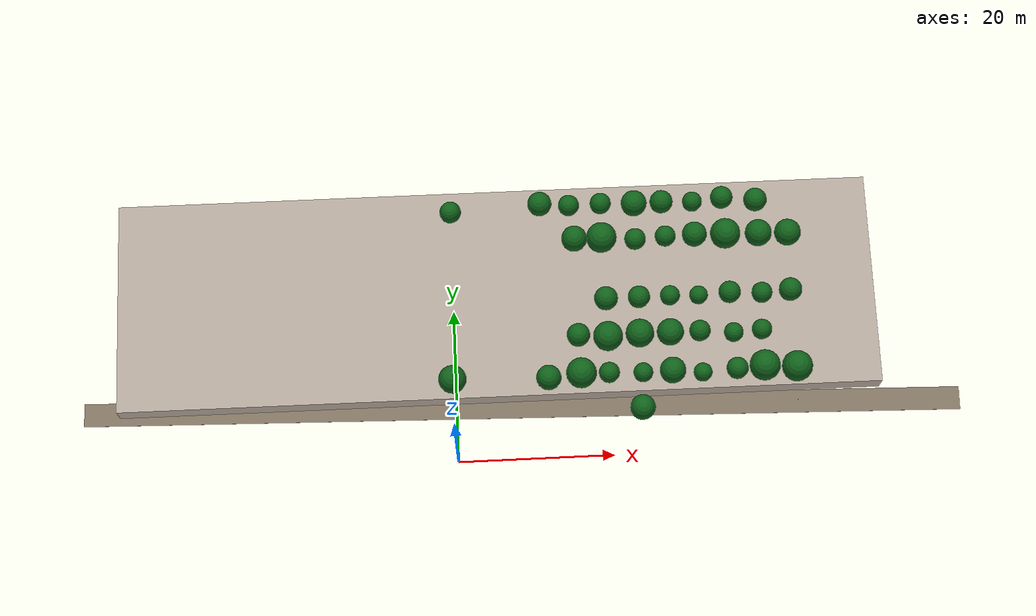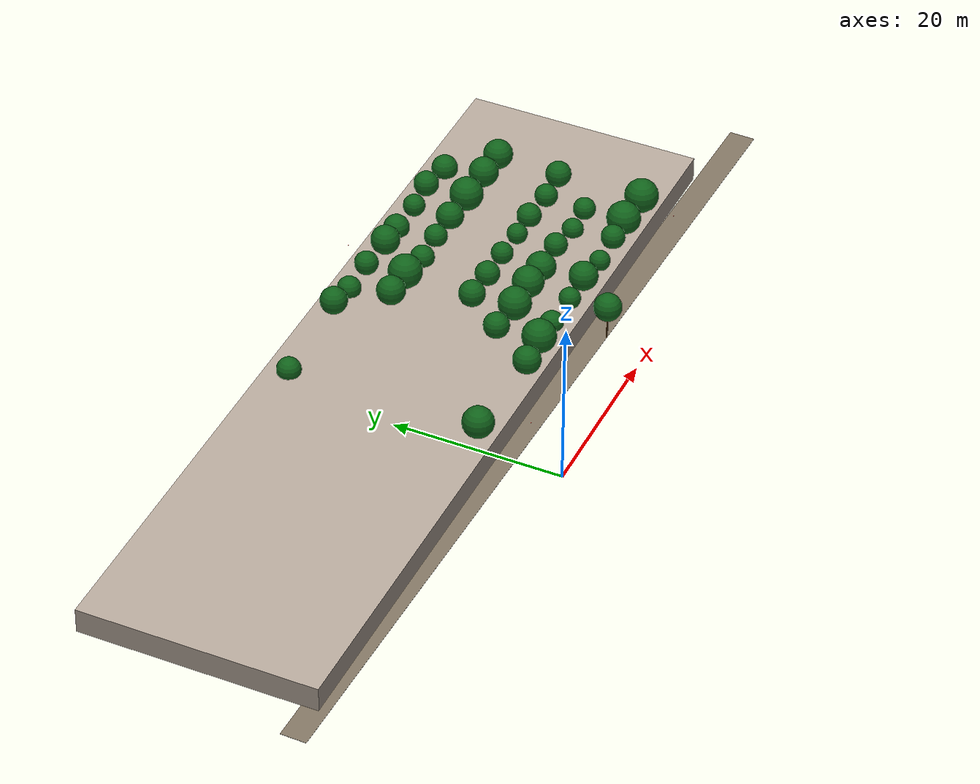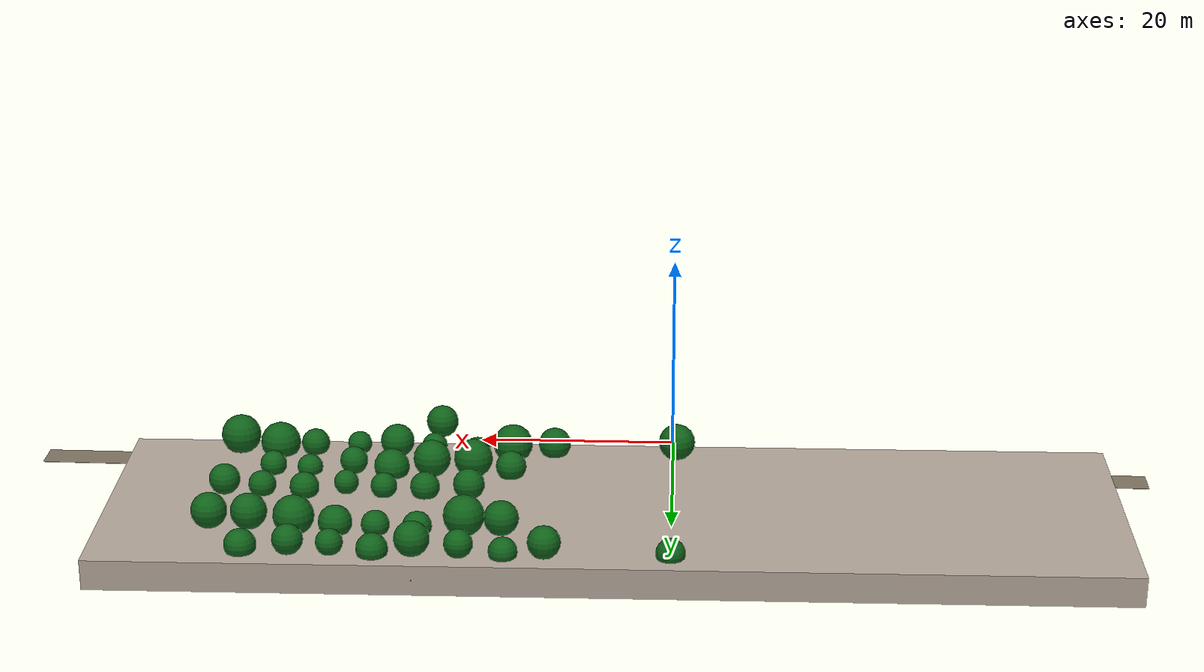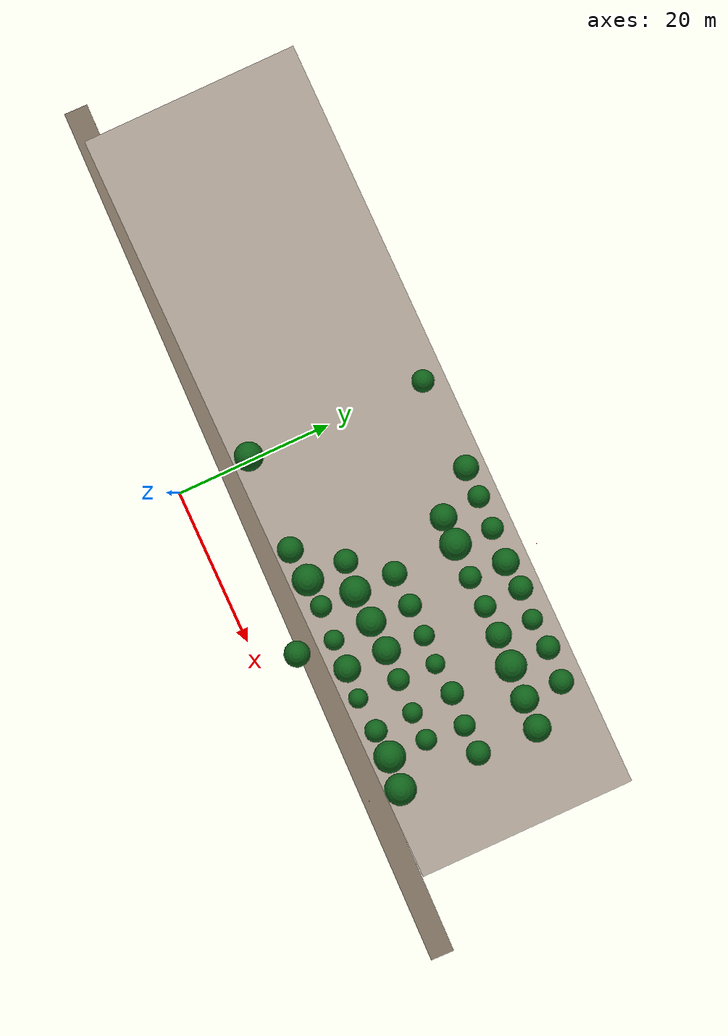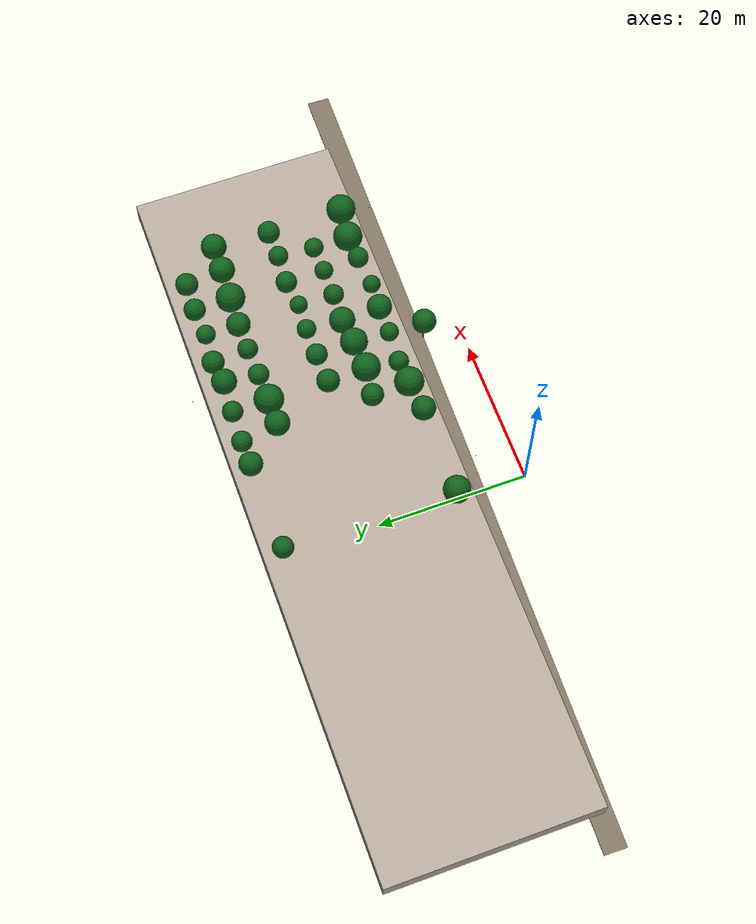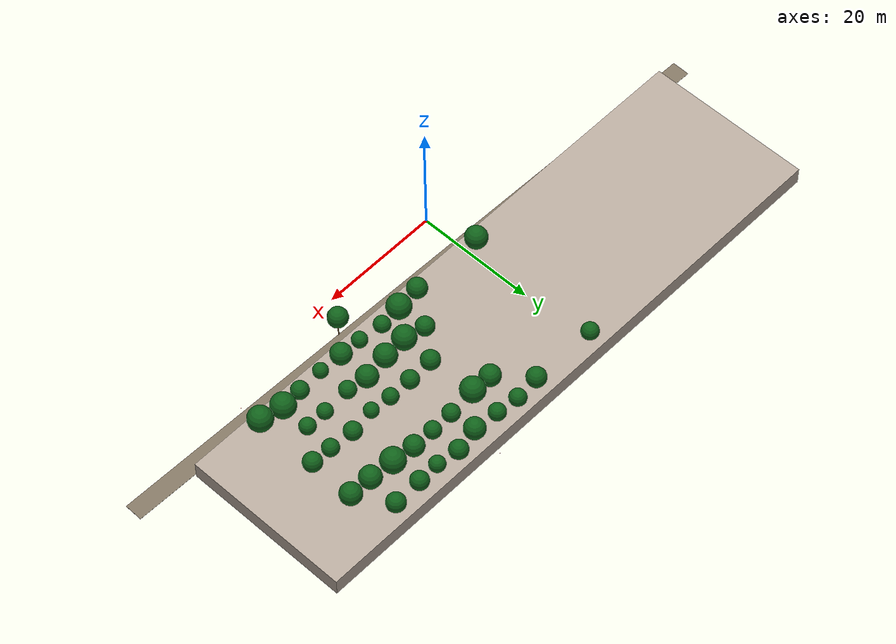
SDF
<sdf version="1.9">
 <world name="cheongsong_orchard">
  <model name="building_0">
   <static>true</static>
   <pose>5.6 21.5 1.5 0 0 0</pose>
   <link name="link">
    <collision name="collision"><geometry><box><size>98.0 27.8 3.0</size></box></geometry></collision>
    <visual name="visual">
     <geometry><box><size>98.0 27.8 3.0</size></box></geometry>
     <material><ambient>0.6 0.55 0.5 1</ambient><diffuse>0.7 0.65 0.6 1</diffuse></material>
    </visual>
   </link>
  </model>
  <model name="road_14">
   <static>true</static>
   <pose>8.4 6.9 0.02 0 0 3.1190</pose>
   <link name="link">
    <collision name="collision">
     <geometry><box><size>112.9 3.0 0.04</size></box></geometry>
     <surface><friction><ode><mu>0.9</mu><mu2>0.9</mu2></ode></friction></surface>
    </collision>
    <visual name="visual">
     <geometry><box><size>112.9 3.0 0.04</size></box></geometry>
     <material><ambient>0.4 0.35 0.28 1</ambient><diffuse>0.5 0.45 0.38 1</diffuse></material>
    </visual>
   </link>
  </model>
  <model name="apple_tree_1305">
   <static>true</static>
   <pose>23.64 5.08 0 0 0 0</pose>
   <link name="link">
    <collision name="trunk_col">
     <pose>0 0 1.36 0 0 0</pose>
     <geometry><cylinder><radius>0.089</radius><length>2.71</length></cylinder></geometry>
    </collision>
    <visual name="trunk_vis">
     <pose>0 0 1.36 0 0 0</pose>
     <geometry><cylinder><radius>0.089</radius><length>2.71</length></cylinder></geometry>
     <material><ambient>0.35 0.22 0.08 1</ambient><diffuse>0.45 0.30 0.12 1</diffuse></material>
    </visual>
    <collision name="canopy_col">
     <pose>0 0 4.33 0 0 0</pose>
     <geometry><sphere><radius>1.62</radius></sphere></geometry>
    </collision>
    <visual name="canopy_vis">
     <pose>0 0 4.33 0 0 0</pose>
     <geometry><sphere><radius>1.62</radius></sphere></geometry>
     <material><ambient>0.04 0.28 0.06 1</ambient><diffuse>0.06 0.38 0.10 1</diffuse></material>
    </visual>
   </link>
  </model>
  <model name="apple_tree_1343">
   <static>true</static>
   <pose>-0.41 9.76 0 0 0 0</pose>
   <link name="link">
    <collision name="trunk_col">
     <pose>0 0 1.32 0 0 0</pose>
     <geometry><cylinder><radius>0.142</radius><length>2.64</length></cylinder></geometry>
    </collision>
    <visual name="trunk_vis">
     <pose>0 0 1.32 0 0 0</pose>
     <geometry><cylinder><radius>0.142</radius><length>2.64</length></cylinder></geometry>
     <material><ambient>0.35 0.22 0.08 1</ambient><diffuse>0.45 0.30 0.12 1</diffuse></material>
    </visual>
    <collision name="canopy_col">
     <pose>0 0 4.45 0 0 0</pose>
     <geometry><sphere><radius>1.81</radius></sphere></geometry>
    </collision>
    <visual name="canopy_vis">
     <pose>0 0 4.45 0 0 0</pose>
     <geometry><sphere><radius>1.81</radius></sphere></geometry>
     <material><ambient>0.04 0.28 0.06 1</ambient><diffuse>0.06 0.38 0.10 1</diffuse></material>
    </visual>
   </link>
  </model>
  <model name="apple_tree_1344">
   <static>true</static>
   <pose>11.89 9.58 0 0 0 0</pose>
   <link name="link">
    <collision name="trunk_col">
     <pose>0 0 1.19 0 0 0</pose>
     <geometry><cylinder><radius>0.114</radius><length>2.38</length></cylinder></geometry>
    </collision>
    <visual name="trunk_vis">
     <pose>0 0 1.19 0 0 0</pose>
     <geometry><cylinder><radius>0.114</radius><length>2.38</length></cylinder></geometry>
     <material><ambient>0.35 0.22 0.08 1</ambient><diffuse>0.45 0.30 0.12 1</diffuse></material>
    </visual>
    <collision name="canopy_col">
     <pose>0 0 3.99 0 0 0</pose>
     <geometry><sphere><radius>1.62</radius></sphere></geometry>
    </collision>
    <visual name="canopy_vis">
     <pose>0 0 3.99 0 0 0</pose>
     <geometry><sphere><radius>1.62</radius></sphere></geometry>
     <material><ambient>0.04 0.28 0.06 1</ambient><diffuse>0.06 0.38 0.10 1</diffuse></material>
    </visual>
   </link>
  </model>
  <model name="apple_tree_1345">
   <static>true</static>
   <pose>16.08 9.99 0 0 0 0</pose>
   <link name="link">
    <collision name="trunk_col">
     <pose>0 0 1.06 0 0 0</pose>
     <geometry><cylinder><radius>0.099</radius><length>2.11</length></cylinder></geometry>
    </collision>
    <visual name="trunk_vis">
     <pose>0 0 1.06 0 0 0</pose>
     <geometry><cylinder><radius>0.099</radius><length>2.11</length></cylinder></geometry>
     <material><ambient>0.35 0.22 0.08 1</ambient><diffuse>0.45 0.30 0.12 1</diffuse></material>
    </visual>
    <collision name="canopy_col">
     <pose>0 0 4.09 0 0 0</pose>
     <geometry><sphere><radius>1.97</radius></sphere></geometry>
    </collision>
    <visual name="canopy_vis">
     <pose>0 0 4.09 0 0 0</pose>
     <geometry><sphere><radius>1.97</radius></sphere></geometry>
     <material><ambient>0.04 0.28 0.06 1</ambient><diffuse>0.06 0.38 0.10 1</diffuse></material>
    </visual>
   </link>
  </model>
  <model name="apple_tree_1346">
   <static>true</static>
   <pose>19.68 10.08 0 0 0 0</pose>
   <link name="link">
    <collision name="trunk_col">
     <pose>0 0 1.00 0 0 0</pose>
     <geometry><cylinder><radius>0.148</radius><length>2.01</length></cylinder></geometry>
    </collision>
    <visual name="trunk_vis">
     <pose>0 0 1.00 0 0 0</pose>
     <geometry><cylinder><radius>0.148</radius><length>2.01</length></cylinder></geometry>
     <material><ambient>0.35 0.22 0.08 1</ambient><diffuse>0.45 0.30 0.12 1</diffuse></material>
    </visual>
    <collision name="canopy_col">
     <pose>0 0 3.36 0 0 0</pose>
     <geometry><sphere><radius>1.35</radius></sphere></geometry>
    </collision>
    <visual name="canopy_vis">
     <pose>0 0 3.36 0 0 0</pose>
     <geometry><sphere><radius>1.35</radius></sphere></geometry>
     <material><ambient>0.04 0.28 0.06 1</ambient><diffuse>0.06 0.38 0.10 1</diffuse></material>
    </visual>
   </link>
  </model>
  <model name="apple_tree_1347">
   <static>true</static>
   <pose>24.00 9.81 0 0 0 0</pose>
   <link name="link">
    <collision name="trunk_col">
     <pose>0 0 1.23 0 0 0</pose>
     <geometry><cylinder><radius>0.116</radius><length>2.47</length></cylinder></geometry>
    </collision>
    <visual name="trunk_vis">
     <pose>0 0 1.23 0 0 0</pose>
     <geometry><cylinder><radius>0.116</radius><length>2.47</length></cylinder></geometry>
     <material><ambient>0.35 0.22 0.08 1</ambient><diffuse>0.45 0.30 0.12 1</diffuse></material>
    </visual>
    <collision name="canopy_col">
     <pose>0 0 3.73 0 0 0</pose>
     <geometry><sphere><radius>1.26</radius></sphere></geometry>
    </collision>
    <visual name="canopy_vis">
     <pose>0 0 3.73 0 0 0</pose>
     <geometry><sphere><radius>1.26</radius></sphere></geometry>
     <material><ambient>0.04 0.28 0.06 1</ambient><diffuse>0.06 0.38 0.10 1</diffuse></material>
    </visual>
   </link>
  </model>
  <model name="apple_tree_1348">
   <static>true</static>
   <pose>27.77 9.82 0 0 0 0</pose>
   <link name="link">
    <collision name="trunk_col">
     <pose>0 0 1.25 0 0 0</pose>
     <geometry><cylinder><radius>0.107</radius><length>2.50</length></cylinder></geometry>
    </collision>
    <visual name="trunk_vis">
     <pose>0 0 1.25 0 0 0</pose>
     <geometry><cylinder><radius>0.107</radius><length>2.50</length></cylinder></geometry>
     <material><ambient>0.35 0.22 0.08 1</ambient><diffuse>0.45 0.30 0.12 1</diffuse></material>
    </visual>
    <collision name="canopy_col">
     <pose>0 0 4.18 0 0 0</pose>
     <geometry><sphere><radius>1.69</radius></sphere></geometry>
    </collision>
    <visual name="canopy_vis">
     <pose>0 0 4.18 0 0 0</pose>
     <geometry><sphere><radius>1.69</radius></sphere></geometry>
     <material><ambient>0.04 0.28 0.06 1</ambient><diffuse>0.06 0.38 0.10 1</diffuse></material>
    </visual>
   </link>
  </model>
  <model name="apple_tree_1349">
   <static>true</static>
   <pose>31.63 9.51 0 0 0 0</pose>
   <link name="link">
    <collision name="trunk_col">
     <pose>0 0 1.25 0 0 0</pose>
     <geometry><cylinder><radius>0.121</radius><length>2.51</length></cylinder></geometry>
    </collision>
    <visual name="trunk_vis">
     <pose>0 0 1.25 0 0 0</pose>
     <geometry><cylinder><radius>0.121</radius><length>2.51</length></cylinder></geometry>
     <material><ambient>0.35 0.22 0.08 1</ambient><diffuse>0.45 0.30 0.12 1</diffuse></material>
    </visual>
    <collision name="canopy_col">
     <pose>0 0 3.71 0 0 0</pose>
     <geometry><sphere><radius>1.21</radius></sphere></geometry>
    </collision>
    <visual name="canopy_vis">
     <pose>0 0 3.71 0 0 0</pose>
     <geometry><sphere><radius>1.21</radius></sphere></geometry>
     <material><ambient>0.04 0.28 0.06 1</ambient><diffuse>0.06 0.38 0.10 1</diffuse></material>
    </visual>
   </link>
  </model>
  <model name="apple_tree_1350">
   <static>true</static>
   <pose>36.07 9.82 0 0 0 0</pose>
   <link name="link">
    <collision name="trunk_col">
     <pose>0 0 1.22 0 0 0</pose>
     <geometry><cylinder><radius>0.130</radius><length>2.44</length></cylinder></geometry>
    </collision>
    <visual name="trunk_vis">
     <pose>0 0 1.22 0 0 0</pose>
     <geometry><cylinder><radius>0.130</radius><length>2.44</length></cylinder></geometry>
     <material><ambient>0.35 0.22 0.08 1</ambient><diffuse>0.45 0.30 0.12 1</diffuse></material>
    </visual>
    <collision name="canopy_col">
     <pose>0 0 3.85 0 0 0</pose>
     <geometry><sphere><radius>1.41</radius></sphere></geometry>
    </collision>
    <visual name="canopy_vis">
     <pose>0 0 3.85 0 0 0</pose>
     <geometry><sphere><radius>1.41</radius></sphere></geometry>
     <material><ambient>0.04 0.28 0.06 1</ambient><diffuse>0.06 0.38 0.10 1</diffuse></material>
    </visual>
   </link>
  </model>
  <model name="apple_tree_1351">
   <static>true</static>
   <pose>39.59 10.03 0 0 0 0</pose>
   <link name="link">
    <collision name="trunk_col">
     <pose>0 0 1.00 0 0 0</pose>
     <geometry><cylinder><radius>0.149</radius><length>2.00</length></cylinder></geometry>
    </collision>
    <visual name="trunk_vis">
     <pose>0 0 1.00 0 0 0</pose>
     <geometry><cylinder><radius>0.149</radius><length>2.00</length></cylinder></geometry>
     <material><ambient>0.35 0.22 0.08 1</ambient><diffuse>0.45 0.30 0.12 1</diffuse></material>
    </visual>
    <collision name="canopy_col">
     <pose>0 0 3.99 0 0 0</pose>
     <geometry><sphere><radius>1.99</radius></sphere></geometry>
    </collision>
    <visual name="canopy_vis">
     <pose>0 0 3.99 0 0 0</pose>
     <geometry><sphere><radius>1.99</radius></sphere></geometry>
     <material><ambient>0.04 0.28 0.06 1</ambient><diffuse>0.06 0.38 0.10 1</diffuse></material>
    </visual>
   </link>
  </model>
  <model name="apple_tree_1352">
   <static>true</static>
   <pose>43.64 9.58 0 0 0 0</pose>
   <link name="link">
    <collision name="trunk_col">
     <pose>0 0 1.29 0 0 0</pose>
     <geometry><cylinder><radius>0.124</radius><length>2.58</length></cylinder></geometry>
    </collision>
    <visual name="trunk_vis">
     <pose>0 0 1.29 0 0 0</pose>
     <geometry><cylinder><radius>0.124</radius><length>2.58</length></cylinder></geometry>
     <material><ambient>0.35 0.22 0.08 1</ambient><diffuse>0.45 0.30 0.12 1</diffuse></material>
    </visual>
    <collision name="canopy_col">
     <pose>0 0 4.56 0 0 0</pose>
     <geometry><sphere><radius>1.98</radius></sphere></geometry>
    </collision>
    <visual name="canopy_vis">
     <pose>0 0 4.56 0 0 0</pose>
     <geometry><sphere><radius>1.98</radius></sphere></geometry>
     <material><ambient>0.04 0.28 0.06 1</ambient><diffuse>0.06 0.38 0.10 1</diffuse></material>
    </visual>
   </link>
  </model>
  <model name="apple_tree_1396">
   <static>true</static>
   <pose>15.96 15.09 0 0 0 0</pose>
   <link name="link">
    <collision name="trunk_col">
     <pose>0 0 1.22 0 0 0</pose>
     <geometry><cylinder><radius>0.102</radius><length>2.44</length></cylinder></geometry>
    </collision>
    <visual name="trunk_vis">
     <pose>0 0 1.22 0 0 0</pose>
     <geometry><cylinder><radius>0.102</radius><length>2.44</length></cylinder></geometry>
     <material><ambient>0.35 0.22 0.08 1</ambient><diffuse>0.45 0.30 0.12 1</diffuse></material>
    </visual>
    <collision name="canopy_col">
     <pose>0 0 3.95 0 0 0</pose>
     <geometry><sphere><radius>1.51</radius></sphere></geometry>
    </collision>
    <visual name="canopy_vis">
     <pose>0 0 3.95 0 0 0</pose>
     <geometry><sphere><radius>1.51</radius></sphere></geometry>
     <material><ambient>0.04 0.28 0.06 1</ambient><diffuse>0.06 0.38 0.10 1</diffuse></material>
    </visual>
   </link>
  </model>
  <model name="apple_tree_1397">
   <static>true</static>
   <pose>19.72 14.59 0 0 0 0</pose>
   <link name="link">
    <collision name="trunk_col">
     <pose>0 0 1.30 0 0 0</pose>
     <geometry><cylinder><radius>0.103</radius><length>2.61</length></cylinder></geometry>
    </collision>
    <visual name="trunk_vis">
     <pose>0 0 1.30 0 0 0</pose>
     <geometry><cylinder><radius>0.103</radius><length>2.61</length></cylinder></geometry>
     <material><ambient>0.35 0.22 0.08 1</ambient><diffuse>0.45 0.30 0.12 1</diffuse></material>
    </visual>
    <collision name="canopy_col">
     <pose>0 0 4.53 0 0 0</pose>
     <geometry><sphere><radius>1.92</radius></sphere></geometry>
    </collision>
    <visual name="canopy_vis">
     <pose>0 0 4.53 0 0 0</pose>
     <geometry><sphere><radius>1.92</radius></sphere></geometry>
     <material><ambient>0.04 0.28 0.06 1</ambient><diffuse>0.06 0.38 0.10 1</diffuse></material>
    </visual>
   </link>
  </model>
  <model name="apple_tree_1398">
   <static>true</static>
   <pose>23.81 14.81 0 0 0 0</pose>
   <link name="link">
    <collision name="trunk_col">
     <pose>0 0 1.35 0 0 0</pose>
     <geometry><cylinder><radius>0.082</radius><length>2.71</length></cylinder></geometry>
    </collision>
    <visual name="trunk_vis">
     <pose>0 0 1.35 0 0 0</pose>
     <geometry><cylinder><radius>0.082</radius><length>2.71</length></cylinder></geometry>
     <material><ambient>0.35 0.22 0.08 1</ambient><diffuse>0.45 0.30 0.12 1</diffuse></material>
    </visual>
    <collision name="canopy_col">
     <pose>0 0 4.54 0 0 0</pose>
     <geometry><sphere><radius>1.84</radius></sphere></geometry>
    </collision>
    <visual name="canopy_vis">
     <pose>0 0 4.54 0 0 0</pose>
     <geometry><sphere><radius>1.84</radius></sphere></geometry>
     <material><ambient>0.04 0.28 0.06 1</ambient><diffuse>0.06 0.38 0.10 1</diffuse></material>
    </visual>
   </link>
  </model>
  <model name="apple_tree_1399">
   <static>true</static>
   <pose>27.80 15.03 0 0 0 0</pose>
   <link name="link">
    <collision name="trunk_col">
     <pose>0 0 0.99 0 0 0</pose>
     <geometry><cylinder><radius>0.091</radius><length>1.99</length></cylinder></geometry>
    </collision>
    <visual name="trunk_vis">
     <pose>0 0 0.99 0 0 0</pose>
     <geometry><cylinder><radius>0.091</radius><length>1.99</length></cylinder></geometry>
     <material><ambient>0.35 0.22 0.08 1</ambient><diffuse>0.45 0.30 0.12 1</diffuse></material>
    </visual>
    <collision name="canopy_col">
     <pose>0 0 3.73 0 0 0</pose>
     <geometry><sphere><radius>1.75</radius></sphere></geometry>
    </collision>
    <visual name="canopy_vis">
     <pose>0 0 3.73 0 0 0</pose>
     <geometry><sphere><radius>1.75</radius></sphere></geometry>
     <material><ambient>0.04 0.28 0.06 1</ambient><diffuse>0.06 0.38 0.10 1</diffuse></material>
    </visual>
   </link>
  </model>
  <model name="apple_tree_1400">
   <static>true</static>
   <pose>31.56 14.89 0 0 0 0</pose>
   <link name="link">
    <collision name="trunk_col">
     <pose>0 0 1.44 0 0 0</pose>
     <geometry><cylinder><radius>0.096</radius><length>2.88</length></cylinder></geometry>
    </collision>
    <visual name="trunk_vis">
     <pose>0 0 1.44 0 0 0</pose>
     <geometry><cylinder><radius>0.096</radius><length>2.88</length></cylinder></geometry>
     <material><ambient>0.35 0.22 0.08 1</ambient><diffuse>0.45 0.30 0.12 1</diffuse></material>
    </visual>
    <collision name="canopy_col">
     <pose>0 0 4.25 0 0 0</pose>
     <geometry><sphere><radius>1.37</radius></sphere></geometry>
    </collision>
    <visual name="canopy_vis">
     <pose>0 0 4.25 0 0 0</pose>
     <geometry><sphere><radius>1.37</radius></sphere></geometry>
     <material><ambient>0.04 0.28 0.06 1</ambient><diffuse>0.06 0.38 0.10 1</diffuse></material>
    </visual>
   </link>
  </model>
  <model name="apple_tree_1401">
   <static>true</static>
   <pose>35.98 14.74 0 0 0 0</pose>
   <link name="link">
    <collision name="trunk_col">
     <pose>0 0 1.08 0 0 0</pose>
     <geometry><cylinder><radius>0.123</radius><length>2.15</length></cylinder></geometry>
    </collision>
    <visual name="trunk_vis">
     <pose>0 0 1.08 0 0 0</pose>
     <geometry><cylinder><radius>0.123</radius><length>2.15</length></cylinder></geometry>
     <material><ambient>0.35 0.22 0.08 1</ambient><diffuse>0.45 0.30 0.12 1</diffuse></material>
    </visual>
    <collision name="canopy_col">
     <pose>0 0 3.41 0 0 0</pose>
     <geometry><sphere><radius>1.26</radius></sphere></geometry>
    </collision>
    <visual name="canopy_vis">
     <pose>0 0 3.41 0 0 0</pose>
     <geometry><sphere><radius>1.26</radius></sphere></geometry>
     <material><ambient>0.04 0.28 0.06 1</ambient><diffuse>0.06 0.38 0.10 1</diffuse></material>
    </visual>
   </link>
  </model>
  <model name="apple_tree_1402">
   <static>true</static>
   <pose>39.60 14.89 0 0 0 0</pose>
   <link name="link">
    <collision name="trunk_col">
     <pose>0 0 1.22 0 0 0</pose>
     <geometry><cylinder><radius>0.136</radius><length>2.44</length></cylinder></geometry>
    </collision>
    <visual name="trunk_vis">
     <pose>0 0 1.22 0 0 0</pose>
     <geometry><cylinder><radius>0.136</radius><length>2.44</length></cylinder></geometry>
     <material><ambient>0.35 0.22 0.08 1</ambient><diffuse>0.45 0.30 0.12 1</diffuse></material>
    </visual>
    <collision name="canopy_col">
     <pose>0 0 3.75 0 0 0</pose>
     <geometry><sphere><radius>1.31</radius></sphere></geometry>
    </collision>
    <visual name="canopy_vis">
     <pose>0 0 3.75 0 0 0</pose>
     <geometry><sphere><radius>1.31</radius></sphere></geometry>
     <material><ambient>0.04 0.28 0.06 1</ambient><diffuse>0.06 0.38 0.10 1</diffuse></material>
    </visual>
   </link>
  </model>
  <model name="apple_tree_1447">
   <static>true</static>
   <pose>19.76 19.80 0 0 0 0</pose>
   <link name="link">
    <collision name="trunk_col">
     <pose>0 0 1.28 0 0 0</pose>
     <geometry><cylinder><radius>0.095</radius><length>2.56</length></cylinder></geometry>
    </collision>
    <visual name="trunk_vis">
     <pose>0 0 1.28 0 0 0</pose>
     <geometry><cylinder><radius>0.095</radius><length>2.56</length></cylinder></geometry>
     <material><ambient>0.35 0.22 0.08 1</ambient><diffuse>0.45 0.30 0.12 1</diffuse></material>
    </visual>
    <collision name="canopy_col">
     <pose>0 0 4.10 0 0 0</pose>
     <geometry><sphere><radius>1.54</radius></sphere></geometry>
    </collision>
    <visual name="canopy_vis">
     <pose>0 0 4.10 0 0 0</pose>
     <geometry><sphere><radius>1.54</radius></sphere></geometry>
     <material><ambient>0.04 0.28 0.06 1</ambient><diffuse>0.06 0.38 0.10 1</diffuse></material>
    </visual>
   </link>
  </model>
  <model name="apple_tree_1448">
   <static>true</static>
   <pose>24.04 19.89 0 0 0 0</pose>
   <link name="link">
    <collision name="trunk_col">
     <pose>0 0 1.19 0 0 0</pose>
     <geometry><cylinder><radius>0.091</radius><length>2.39</length></cylinder></geometry>
    </collision>
    <visual name="trunk_vis">
     <pose>0 0 1.19 0 0 0</pose>
     <geometry><cylinder><radius>0.091</radius><length>2.39</length></cylinder></geometry>
     <material><ambient>0.35 0.22 0.08 1</ambient><diffuse>0.45 0.30 0.12 1</diffuse></material>
    </visual>
    <collision name="canopy_col">
     <pose>0 0 3.83 0 0 0</pose>
     <geometry><sphere><radius>1.44</radius></sphere></geometry>
    </collision>
    <visual name="canopy_vis">
     <pose>0 0 3.83 0 0 0</pose>
     <geometry><sphere><radius>1.44</radius></sphere></geometry>
     <material><ambient>0.04 0.28 0.06 1</ambient><diffuse>0.06 0.38 0.10 1</diffuse></material>
    </visual>
   </link>
  </model>
  <model name="apple_tree_1449">
   <static>true</static>
   <pose>28.05 19.91 0 0 0 0</pose>
   <link name="link">
    <collision name="trunk_col">
     <pose>0 0 1.28 0 0 0</pose>
     <geometry><cylinder><radius>0.140</radius><length>2.57</length></cylinder></geometry>
    </collision>
    <visual name="trunk_vis">
     <pose>0 0 1.28 0 0 0</pose>
     <geometry><cylinder><radius>0.140</radius><length>2.57</length></cylinder></geometry>
     <material><ambient>0.35 0.22 0.08 1</ambient><diffuse>0.45 0.30 0.12 1</diffuse></material>
    </visual>
    <collision name="canopy_col">
     <pose>0 0 3.86 0 0 0</pose>
     <geometry><sphere><radius>1.29</radius></sphere></geometry>
    </collision>
    <visual name="canopy_vis">
     <pose>0 0 3.86 0 0 0</pose>
     <geometry><sphere><radius>1.29</radius></sphere></geometry>
     <material><ambient>0.04 0.28 0.06 1</ambient><diffuse>0.06 0.38 0.10 1</diffuse></material>
    </visual>
   </link>
  </model>
  <model name="apple_tree_1450">
   <static>true</static>
   <pose>31.72 19.72 0 0 0 0</pose>
   <link name="link">
    <collision name="trunk_col">
     <pose>0 0 1.46 0 0 0</pose>
     <geometry><cylinder><radius>0.122</radius><length>2.92</length></cylinder></geometry>
    </collision>
    <visual name="trunk_vis">
     <pose>0 0 1.46 0 0 0</pose>
     <geometry><cylinder><radius>0.122</radius><length>2.92</length></cylinder></geometry>
     <material><ambient>0.35 0.22 0.08 1</ambient><diffuse>0.45 0.30 0.12 1</diffuse></material>
    </visual>
    <collision name="canopy_col">
     <pose>0 0 4.12 0 0 0</pose>
     <geometry><sphere><radius>1.20</radius></sphere></geometry>
    </collision>
    <visual name="canopy_vis">
     <pose>0 0 4.12 0 0 0</pose>
     <geometry><sphere><radius>1.20</radius></sphere></geometry>
     <material><ambient>0.04 0.28 0.06 1</ambient><diffuse>0.06 0.38 0.10 1</diffuse></material>
    </visual>
   </link>
  </model>
  <model name="apple_tree_1451">
   <static>true</static>
   <pose>35.80 20.08 0 0 0 0</pose>
   <link name="link">
    <collision name="trunk_col">
     <pose>0 0 1.14 0 0 0</pose>
     <geometry><cylinder><radius>0.119</radius><length>2.29</length></cylinder></geometry>
    </collision>
    <visual name="trunk_vis">
     <pose>0 0 1.14 0 0 0</pose>
     <geometry><cylinder><radius>0.119</radius><length>2.29</length></cylinder></geometry>
     <material><ambient>0.35 0.22 0.08 1</ambient><diffuse>0.45 0.30 0.12 1</diffuse></material>
    </visual>
    <collision name="canopy_col">
     <pose>0 0 3.73 0 0 0</pose>
     <geometry><sphere><radius>1.44</radius></sphere></geometry>
    </collision>
    <visual name="canopy_vis">
     <pose>0 0 3.73 0 0 0</pose>
     <geometry><sphere><radius>1.44</radius></sphere></geometry>
     <material><ambient>0.04 0.28 0.06 1</ambient><diffuse>0.06 0.38 0.10 1</diffuse></material>
    </visual>
   </link>
  </model>
  <model name="apple_tree_1452">
   <static>true</static>
   <pose>39.96 19.81 0 0 0 0</pose>
   <link name="link">
    <collision name="trunk_col">
     <pose>0 0 1.22 0 0 0</pose>
     <geometry><cylinder><radius>0.108</radius><length>2.45</length></cylinder></geometry>
    </collision>
    <visual name="trunk_vis">
     <pose>0 0 1.22 0 0 0</pose>
     <geometry><cylinder><radius>0.108</radius><length>2.45</length></cylinder></geometry>
     <material><ambient>0.35 0.22 0.08 1</ambient><diffuse>0.45 0.30 0.12 1</diffuse></material>
    </visual>
    <collision name="canopy_col">
     <pose>0 0 3.80 0 0 0</pose>
     <geometry><sphere><radius>1.35</radius></sphere></geometry>
    </collision>
    <visual name="canopy_vis">
     <pose>0 0 3.80 0 0 0</pose>
     <geometry><sphere><radius>1.35</radius></sphere></geometry>
     <material><ambient>0.04 0.28 0.06 1</ambient><diffuse>0.06 0.38 0.10 1</diffuse></material>
    </visual>
   </link>
  </model>
  <model name="apple_tree_1453">
   <static>true</static>
   <pose>43.61 19.92 0 0 0 0</pose>
   <link name="link">
    <collision name="trunk_col">
     <pose>0 0 1.41 0 0 0</pose>
     <geometry><cylinder><radius>0.100</radius><length>2.82</length></cylinder></geometry>
    </collision>
    <visual name="trunk_vis">
     <pose>0 0 1.41 0 0 0</pose>
     <geometry><cylinder><radius>0.100</radius><length>2.82</length></cylinder></geometry>
     <material><ambient>0.35 0.22 0.08 1</ambient><diffuse>0.45 0.30 0.12 1</diffuse></material>
    </visual>
    <collision name="canopy_col">
     <pose>0 0 4.33 0 0 0</pose>
     <geometry><sphere><radius>1.51</radius></sphere></geometry>
    </collision>
    <visual name="canopy_vis">
     <pose>0 0 4.33 0 0 0</pose>
     <geometry><sphere><radius>1.51</radius></sphere></geometry>
     <material><ambient>0.04 0.28 0.06 1</ambient><diffuse>0.06 0.38 0.10 1</diffuse></material>
    </visual>
   </link>
  </model>
  <model name="apple_tree_1497">
   <static>true</static>
   <pose>16.05 27.98 0 0 0 0</pose>
   <link name="link">
    <collision name="trunk_col">
     <pose>0 0 1.39 0 0 0</pose>
     <geometry><cylinder><radius>0.143</radius><length>2.79</length></cylinder></geometry>
    </collision>
    <visual name="trunk_vis">
     <pose>0 0 1.39 0 0 0</pose>
     <geometry><cylinder><radius>0.143</radius><length>2.79</length></cylinder></geometry>
     <material><ambient>0.35 0.22 0.08 1</ambient><diffuse>0.45 0.30 0.12 1</diffuse></material>
    </visual>
    <collision name="canopy_col">
     <pose>0 0 4.46 0 0 0</pose>
     <geometry><sphere><radius>1.68</radius></sphere></geometry>
    </collision>
    <visual name="canopy_vis">
     <pose>0 0 4.46 0 0 0</pose>
     <geometry><sphere><radius>1.68</radius></sphere></geometry>
     <material><ambient>0.04 0.28 0.06 1</ambient><diffuse>0.06 0.38 0.10 1</diffuse></material>
    </visual>
   </link>
  </model>
  <model name="apple_tree_1498">
   <static>true</static>
   <pose>19.58 27.92 0 0 0 0</pose>
   <link name="link">
    <collision name="trunk_col">
     <pose>0 0 1.33 0 0 0</pose>
     <geometry><cylinder><radius>0.081</radius><length>2.66</length></cylinder></geometry>
    </collision>
    <visual name="trunk_vis">
     <pose>0 0 1.33 0 0 0</pose>
     <geometry><cylinder><radius>0.081</radius><length>2.66</length></cylinder></geometry>
     <material><ambient>0.35 0.22 0.08 1</ambient><diffuse>0.45 0.30 0.12 1</diffuse></material>
    </visual>
    <collision name="canopy_col">
     <pose>0 0 4.64 0 0 0</pose>
     <geometry><sphere><radius>1.98</radius></sphere></geometry>
    </collision>
    <visual name="canopy_vis">
     <pose>0 0 4.64 0 0 0</pose>
     <geometry><sphere><radius>1.98</radius></sphere></geometry>
     <material><ambient>0.04 0.28 0.06 1</ambient><diffuse>0.06 0.38 0.10 1</diffuse></material>
    </visual>
   </link>
  </model>
  <model name="apple_tree_1499">
   <static>true</static>
   <pose>24.02 27.91 0 0 0 0</pose>
   <link name="link">
    <collision name="trunk_col">
     <pose>0 0 1.04 0 0 0</pose>
     <geometry><cylinder><radius>0.115</radius><length>2.09</length></cylinder></geometry>
    </collision>
    <visual name="trunk_vis">
     <pose>0 0 1.04 0 0 0</pose>
     <geometry><cylinder><radius>0.115</radius><length>2.09</length></cylinder></geometry>
     <material><ambient>0.35 0.22 0.08 1</ambient><diffuse>0.45 0.30 0.12 1</diffuse></material>
    </visual>
    <collision name="canopy_col">
     <pose>0 0 3.48 0 0 0</pose>
     <geometry><sphere><radius>1.40</radius></sphere></geometry>
    </collision>
    <visual name="canopy_vis">
     <pose>0 0 3.48 0 0 0</pose>
     <geometry><sphere><radius>1.40</radius></sphere></geometry>
     <material><ambient>0.04 0.28 0.06 1</ambient><diffuse>0.06 0.38 0.10 1</diffuse></material>
    </visual>
   </link>
  </model>
  <model name="apple_tree_1500">
   <static>true</static>
   <pose>27.96 28.09 0 0 0 0</pose>
   <link name="link">
    <collision name="trunk_col">
     <pose>0 0 1.15 0 0 0</pose>
     <geometry><cylinder><radius>0.132</radius><length>2.30</length></cylinder></geometry>
    </collision>
    <visual name="trunk_vis">
     <pose>0 0 1.15 0 0 0</pose>
     <geometry><cylinder><radius>0.132</radius><length>2.30</length></cylinder></geometry>
     <material><ambient>0.35 0.22 0.08 1</ambient><diffuse>0.45 0.30 0.12 1</diffuse></material>
    </visual>
    <collision name="canopy_col">
     <pose>0 0 3.66 0 0 0</pose>
     <geometry><sphere><radius>1.36</radius></sphere></geometry>
    </collision>
    <visual name="canopy_vis">
     <pose>0 0 3.66 0 0 0</pose>
     <geometry><sphere><radius>1.36</radius></sphere></geometry>
     <material><ambient>0.04 0.28 0.06 1</ambient><diffuse>0.06 0.38 0.10 1</diffuse></material>
    </visual>
   </link>
  </model>
  <model name="apple_tree_1501">
   <static>true</static>
   <pose>31.76 28.11 0 0 0 0</pose>
   <link name="link">
    <collision name="trunk_col">
     <pose>0 0 1.13 0 0 0</pose>
     <geometry><cylinder><radius>0.083</radius><length>2.25</length></cylinder></geometry>
    </collision>
    <visual name="trunk_vis">
     <pose>0 0 1.13 0 0 0</pose>
     <geometry><cylinder><radius>0.083</radius><length>2.25</length></cylinder></geometry>
     <material><ambient>0.35 0.22 0.08 1</ambient><diffuse>0.45 0.30 0.12 1</diffuse></material>
    </visual>
    <collision name="canopy_col">
     <pose>0 0 3.87 0 0 0</pose>
     <geometry><sphere><radius>1.62</radius></sphere></geometry>
    </collision>
    <visual name="canopy_vis">
     <pose>0 0 3.87 0 0 0</pose>
     <geometry><sphere><radius>1.62</radius></sphere></geometry>
     <material><ambient>0.04 0.28 0.06 1</ambient><diffuse>0.06 0.38 0.10 1</diffuse></material>
    </visual>
   </link>
  </model>
  <model name="apple_tree_1502">
   <static>true</static>
   <pose>35.72 27.88 0 0 0 0</pose>
   <link name="link">
    <collision name="trunk_col">
     <pose>0 0 1.19 0 0 0</pose>
     <geometry><cylinder><radius>0.112</radius><length>2.37</length></cylinder></geometry>
    </collision>
    <visual name="trunk_vis">
     <pose>0 0 1.19 0 0 0</pose>
     <geometry><cylinder><radius>0.112</radius><length>2.37</length></cylinder></geometry>
     <material><ambient>0.35 0.22 0.08 1</ambient><diffuse>0.45 0.30 0.12 1</diffuse></material>
    </visual>
    <collision name="canopy_col">
     <pose>0 0 4.35 0 0 0</pose>
     <geometry><sphere><radius>1.97</radius></sphere></geometry>
    </collision>
    <visual name="canopy_vis">
     <pose>0 0 4.35 0 0 0</pose>
     <geometry><sphere><radius>1.97</radius></sphere></geometry>
     <material><ambient>0.04 0.28 0.06 1</ambient><diffuse>0.06 0.38 0.10 1</diffuse></material>
    </visual>
   </link>
  </model>
  <model name="apple_tree_1503">
   <static>true</static>
   <pose>39.99 27.68 0 0 0 0</pose>
   <link name="link">
    <collision name="trunk_col">
     <pose>0 0 1.45 0 0 0</pose>
     <geometry><cylinder><radius>0.115</radius><length>2.90</length></cylinder></geometry>
    </collision>
    <visual name="trunk_vis">
     <pose>0 0 1.45 0 0 0</pose>
     <geometry><cylinder><radius>0.115</radius><length>2.90</length></cylinder></geometry>
     <material><ambient>0.35 0.22 0.08 1</ambient><diffuse>0.45 0.30 0.12 1</diffuse></material>
    </visual>
    <collision name="canopy_col">
     <pose>0 0 4.64 0 0 0</pose>
     <geometry><sphere><radius>1.75</radius></sphere></geometry>
    </collision>
    <visual name="canopy_vis">
     <pose>0 0 4.64 0 0 0</pose>
     <geometry><sphere><radius>1.75</radius></sphere></geometry>
     <material><ambient>0.04 0.28 0.06 1</ambient><diffuse>0.06 0.38 0.10 1</diffuse></material>
    </visual>
   </link>
  </model>
  <model name="apple_tree_1504">
   <static>true</static>
   <pose>43.79 27.60 0 0 0 0</pose>
   <link name="link">
    <collision name="trunk_col">
     <pose>0 0 1.45 0 0 0</pose>
     <geometry><cylinder><radius>0.124</radius><length>2.89</length></cylinder></geometry>
    </collision>
    <visual name="trunk_vis">
     <pose>0 0 1.45 0 0 0</pose>
     <geometry><cylinder><radius>0.124</radius><length>2.89</length></cylinder></geometry>
     <material><ambient>0.35 0.22 0.08 1</ambient><diffuse>0.45 0.30 0.12 1</diffuse></material>
    </visual>
    <collision name="canopy_col">
     <pose>0 0 4.62 0 0 0</pose>
     <geometry><sphere><radius>1.73</radius></sphere></geometry>
    </collision>
    <visual name="canopy_vis">
     <pose>0 0 4.62 0 0 0</pose>
     <geometry><sphere><radius>1.73</radius></sphere></geometry>
     <material><ambient>0.04 0.28 0.06 1</ambient><diffuse>0.06 0.38 0.10 1</diffuse></material>
    </visual>
   </link>
  </model>
  <model name="apple_tree_1550">
   <static>true</static>
   <pose>0.06 32.67 0 0 0 0</pose>
   <link name="link">
    <collision name="trunk_col">
     <pose>0 0 0.99 0 0 0</pose>
     <geometry><cylinder><radius>0.104</radius><length>1.98</length></cylinder></geometry>
    </collision>
    <visual name="trunk_vis">
     <pose>0 0 0.99 0 0 0</pose>
     <geometry><cylinder><radius>0.104</radius><length>1.98</length></cylinder></geometry>
     <material><ambient>0.35 0.22 0.08 1</ambient><diffuse>0.45 0.30 0.12 1</diffuse></material>
    </visual>
    <collision name="canopy_col">
     <pose>0 0 3.39 0 0 0</pose>
     <geometry><sphere><radius>1.41</radius></sphere></geometry>
    </collision>
    <visual name="canopy_vis">
     <pose>0 0 3.39 0 0 0</pose>
     <geometry><sphere><radius>1.41</radius></sphere></geometry>
     <material><ambient>0.04 0.28 0.06 1</ambient><diffuse>0.06 0.38 0.10 1</diffuse></material>
    </visual>
   </link>
  </model>
  <model name="apple_tree_1551">
   <static>true</static>
   <pose>11.76 32.95 0 0 0 0</pose>
   <link name="link">
    <collision name="trunk_col">
     <pose>0 0 1.43 0 0 0</pose>
     <geometry><cylinder><radius>0.142</radius><length>2.86</length></cylinder></geometry>
    </collision>
    <visual name="trunk_vis">
     <pose>0 0 1.43 0 0 0</pose>
     <geometry><cylinder><radius>0.142</radius><length>2.86</length></cylinder></geometry>
     <material><ambient>0.35 0.22 0.08 1</ambient><diffuse>0.45 0.30 0.12 1</diffuse></material>
    </visual>
    <collision name="canopy_col">
     <pose>0 0 4.44 0 0 0</pose>
     <geometry><sphere><radius>1.58</radius></sphere></geometry>
    </collision>
    <visual name="canopy_vis">
     <pose>0 0 4.44 0 0 0</pose>
     <geometry><sphere><radius>1.58</radius></sphere></geometry>
     <material><ambient>0.04 0.28 0.06 1</ambient><diffuse>0.06 0.38 0.10 1</diffuse></material>
    </visual>
   </link>
  </model>
  <model name="apple_tree_1552">
   <static>true</static>
   <pose>15.59 32.94 0 0 0 0</pose>
   <link name="link">
    <collision name="trunk_col">
     <pose>0 0 1.03 0 0 0</pose>
     <geometry><cylinder><radius>0.115</radius><length>2.05</length></cylinder></geometry>
    </collision>
    <visual name="trunk_vis">
     <pose>0 0 1.03 0 0 0</pose>
     <geometry><cylinder><radius>0.115</radius><length>2.05</length></cylinder></geometry>
     <material><ambient>0.35 0.22 0.08 1</ambient><diffuse>0.45 0.30 0.12 1</diffuse></material>
    </visual>
    <collision name="canopy_col">
     <pose>0 0 3.43 0 0 0</pose>
     <geometry><sphere><radius>1.38</radius></sphere></geometry>
    </collision>
    <visual name="canopy_vis">
     <pose>0 0 3.43 0 0 0</pose>
     <geometry><sphere><radius>1.38</radius></sphere></geometry>
     <material><ambient>0.04 0.28 0.06 1</ambient><diffuse>0.06 0.38 0.10 1</diffuse></material>
    </visual>
   </link>
  </model>
  <model name="apple_tree_1553">
   <static>true</static>
   <pose>19.72 32.80 0 0 0 0</pose>
   <link name="link">
    <collision name="trunk_col">
     <pose>0 0 1.36 0 0 0</pose>
     <geometry><cylinder><radius>0.141</radius><length>2.71</length></cylinder></geometry>
    </collision>
    <visual name="trunk_vis">
     <pose>0 0 1.36 0 0 0</pose>
     <geometry><cylinder><radius>0.141</radius><length>2.71</length></cylinder></geometry>
     <material><ambient>0.35 0.22 0.08 1</ambient><diffuse>0.45 0.30 0.12 1</diffuse></material>
    </visual>
    <collision name="canopy_col">
     <pose>0 0 4.09 0 0 0</pose>
     <geometry><sphere><radius>1.38</radius></sphere></geometry>
    </collision>
    <visual name="canopy_vis">
     <pose>0 0 4.09 0 0 0</pose>
     <geometry><sphere><radius>1.38</radius></sphere></geometry>
     <material><ambient>0.04 0.28 0.06 1</ambient><diffuse>0.06 0.38 0.10 1</diffuse></material>
    </visual>
   </link>
  </model>
  <model name="apple_tree_1554">
   <static>true</static>
   <pose>24.07 32.53 0 0 0 0</pose>
   <link name="link">
    <collision name="trunk_col">
     <pose>0 0 1.36 0 0 0</pose>
     <geometry><cylinder><radius>0.094</radius><length>2.71</length></cylinder></geometry>
    </collision>
    <visual name="trunk_vis">
     <pose>0 0 1.36 0 0 0</pose>
     <geometry><cylinder><radius>0.094</radius><length>2.71</length></cylinder></geometry>
     <material><ambient>0.35 0.22 0.08 1</ambient><diffuse>0.45 0.30 0.12 1</diffuse></material>
    </visual>
    <collision name="canopy_col">
     <pose>0 0 4.40 0 0 0</pose>
     <geometry><sphere><radius>1.69</radius></sphere></geometry>
    </collision>
    <visual name="canopy_vis">
     <pose>0 0 4.40 0 0 0</pose>
     <geometry><sphere><radius>1.69</radius></sphere></geometry>
     <material><ambient>0.04 0.28 0.06 1</ambient><diffuse>0.06 0.38 0.10 1</diffuse></material>
    </visual>
   </link>
  </model>
  <model name="apple_tree_1555">
   <static>true</static>
   <pose>27.74 32.92 0 0 0 0</pose>
   <link name="link">
    <collision name="trunk_col">
     <pose>0 0 0.98 0 0 0</pose>
     <geometry><cylinder><radius>0.114</radius><length>1.97</length></cylinder></geometry>
    </collision>
    <visual name="trunk_vis">
     <pose>0 0 0.98 0 0 0</pose>
     <geometry><cylinder><radius>0.114</radius><length>1.97</length></cylinder></geometry>
     <material><ambient>0.35 0.22 0.08 1</ambient><diffuse>0.45 0.30 0.12 1</diffuse></material>
    </visual>
    <collision name="canopy_col">
     <pose>0 0 3.48 0 0 0</pose>
     <geometry><sphere><radius>1.51</radius></sphere></geometry>
    </collision>
    <visual name="canopy_vis">
     <pose>0 0 3.48 0 0 0</pose>
     <geometry><sphere><radius>1.51</radius></sphere></geometry>
     <material><ambient>0.04 0.28 0.06 1</ambient><diffuse>0.06 0.38 0.10 1</diffuse></material>
    </visual>
   </link>
  </model>
  <model name="apple_tree_1556">
   <static>true</static>
   <pose>31.74 32.59 0 0 0 0</pose>
   <link name="link">
    <collision name="trunk_col">
     <pose>0 0 1.32 0 0 0</pose>
     <geometry><cylinder><radius>0.118</radius><length>2.63</length></cylinder></geometry>
    </collision>
    <visual name="trunk_vis">
     <pose>0 0 1.32 0 0 0</pose>
     <geometry><cylinder><radius>0.118</radius><length>2.63</length></cylinder></geometry>
     <material><ambient>0.35 0.22 0.08 1</ambient><diffuse>0.45 0.30 0.12 1</diffuse></material>
    </visual>
    <collision name="canopy_col">
     <pose>0 0 3.93 0 0 0</pose>
     <geometry><sphere><radius>1.29</radius></sphere></geometry>
    </collision>
    <visual name="canopy_vis">
     <pose>0 0 3.93 0 0 0</pose>
     <geometry><sphere><radius>1.29</radius></sphere></geometry>
     <material><ambient>0.04 0.28 0.06 1</ambient><diffuse>0.06 0.38 0.10 1</diffuse></material>
    </visual>
   </link>
  </model>
  <model name="apple_tree_1557">
   <static>true</static>
   <pose>35.58 32.88 0 0 0 0</pose>
   <link name="link">
    <collision name="trunk_col">
     <pose>0 0 1.42 0 0 0</pose>
     <geometry><cylinder><radius>0.105</radius><length>2.83</length></cylinder></geometry>
    </collision>
    <visual name="trunk_vis">
     <pose>0 0 1.42 0 0 0</pose>
     <geometry><cylinder><radius>0.105</radius><length>2.83</length></cylinder></geometry>
     <material><ambient>0.35 0.22 0.08 1</ambient><diffuse>0.45 0.30 0.12 1</diffuse></material>
    </visual>
    <collision name="canopy_col">
     <pose>0 0 4.31 0 0 0</pose>
     <geometry><sphere><radius>1.47</radius></sphere></geometry>
    </collision>
    <visual name="canopy_vis">
     <pose>0 0 4.31 0 0 0</pose>
     <geometry><sphere><radius>1.47</radius></sphere></geometry>
     <material><ambient>0.04 0.28 0.06 1</ambient><diffuse>0.06 0.38 0.10 1</diffuse></material>
    </visual>
   </link>
  </model>
  <model name="apple_tree_1558">
   <static>true</static>
   <pose>40.06 32.65 0 0 0 0</pose>
   <link name="link">
    <collision name="trunk_col">
     <pose>0 0 1.02 0 0 0</pose>
     <geometry><cylinder><radius>0.081</radius><length>2.04</length></cylinder></geometry>
    </collision>
    <visual name="trunk_vis">
     <pose>0 0 1.02 0 0 0</pose>
     <geometry><cylinder><radius>0.081</radius><length>2.04</length></cylinder></geometry>
     <material><ambient>0.35 0.22 0.08 1</ambient><diffuse>0.45 0.30 0.12 1</diffuse></material>
    </visual>
    <collision name="canopy_col">
     <pose>0 0 3.57 0 0 0</pose>
     <geometry><sphere><radius>1.53</radius></sphere></geometry>
    </collision>
    <visual name="canopy_vis">
     <pose>0 0 3.57 0 0 0</pose>
     <geometry><sphere><radius>1.53</radius></sphere></geometry>
     <material><ambient>0.04 0.28 0.06 1</ambient><diffuse>0.06 0.38 0.10 1</diffuse></material>
    </visual>
   </link>
  </model>
  <model name="apple_1300_1">
   <static>true</static>
   <pose>3.88 5.46 2.56 0 0 0</pose>
   <link name="link">
    <visual name="visual">
     <geometry><sphere><radius>0.04</radius></sphere></geometry>
     <material><ambient>0.7 0.05 0.02 1</ambient><diffuse>0.9 0.10 0.05 1</diffuse></material>
    </visual>
   </link>
  </model>
  <model name="apple_1310_4">
   <static>true</static>
   <pose>43.57 5.54 2.99 0 0 0</pose>
   <link name="link">
    <visual name="visual">
     <geometry><sphere><radius>0.04</radius></sphere></geometry>
     <material><ambient>0.7 0.05 0.02 1</ambient><diffuse>0.9 0.10 0.05 1</diffuse></material>
    </visual>
   </link>
  </model>
  <model name="apple_1350_0">
   <static>true</static>
   <pose>35.92 10.32 2.00 0 0 0</pose>
   <link name="link">
    <visual name="visual">
     <geometry><sphere><radius>0.04</radius></sphere></geometry>
     <material><ambient>0.7 0.05 0.02 1</ambient><diffuse>0.9 0.10 0.05 1</diffuse></material>
    </visual>
   </link>
  </model>
  <model name="apple_1350_1">
   <static>true</static>
   <pose>36.19 10.55 2.17 0 0 0</pose>
   <link name="link">
    <visual name="visual">
     <geometry><sphere><radius>0.04</radius></sphere></geometry>
     <material><ambient>0.7 0.05 0.02 1</ambient><diffuse>0.9 0.10 0.05 1</diffuse></material>
    </visual>
   </link>
  </model>
  <model name="apple_1350_2">
   <static>true</static>
   <pose>35.38 8.99 2.15 0 0 0</pose>
   <link name="link">
    <visual name="visual">
     <geometry><sphere><radius>0.04</radius></sphere></geometry>
     <material><ambient>0.7 0.05 0.02 1</ambient><diffuse>0.9 0.10 0.05 1</diffuse></material>
    </visual>
   </link>
  </model>
  <model name="apple_1400_0">
   <static>true</static>
   <pose>31.04 14.13 2.48 0 0 0</pose>
   <link name="link">
    <visual name="visual">
     <geometry><sphere><radius>0.04</radius></sphere></geometry>
     <material><ambient>0.7 0.05 0.02 1</ambient><diffuse>0.9 0.10 0.05 1</diffuse></material>
    </visual>
   </link>
  </model>
  <model name="apple_1400_1">
   <static>true</static>
   <pose>32.25 14.72 3.03 0 0 0</pose>
   <link name="link">
    <visual name="visual">
     <geometry><sphere><radius>0.04</radius></sphere></geometry>
     <material><ambient>0.7 0.05 0.02 1</ambient><diffuse>0.9 0.10 0.05 1</diffuse></material>
    </visual>
   </link>
  </model>
  <model name="apple_1400_2">
   <static>true</static>
   <pose>30.95 14.04 2.66 0 0 0</pose>
   <link name="link">
    <visual name="visual">
     <geometry><sphere><radius>0.04</radius></sphere></geometry>
     <material><ambient>0.7 0.05 0.02 1</ambient><diffuse>0.9 0.10 0.05 1</diffuse></material>
    </visual>
   </link>
  </model>
  <model name="apple_1400_3">
   <static>true</static>
   <pose>31.68 14.33 2.68 0 0 0</pose>
   <link name="link">
    <visual name="visual">
     <geometry><sphere><radius>0.04</radius></sphere></geometry>
     <material><ambient>0.7 0.05 0.02 1</ambient><diffuse>0.9 0.10 0.05 1</diffuse></material>
    </visual>
   </link>
  </model>
  <model name="apple_1400_4">
   <static>true</static>
   <pose>31.96 14.38 3.19 0 0 0</pose>
   <link name="link">
    <visual name="visual">
     <geometry><sphere><radius>0.04</radius></sphere></geometry>
     <material><ambient>0.7 0.05 0.02 1</ambient><diffuse>0.9 0.10 0.05 1</diffuse></material>
    </visual>
   </link>
  </model>
  <model name="apple_1450_0">
   <static>true</static>
   <pose>31.67 18.81 2.60 0 0 0</pose>
   <link name="link">
    <visual name="visual">
     <geometry><sphere><radius>0.04</radius></sphere></geometry>
     <material><ambient>0.7 0.05 0.02 1</ambient><diffuse>0.9 0.10 0.05 1</diffuse></material>
    </visual>
   </link>
  </model>
  <model name="apple_1450_1">
   <static>true</static>
   <pose>32.03 19.78 2.87 0 0 0</pose>
   <link name="link">
    <visual name="visual">
     <geometry><sphere><radius>0.04</radius></sphere></geometry>
     <material><ambient>0.7 0.05 0.02 1</ambient><diffuse>0.9 0.10 0.05 1</diffuse></material>
    </visual>
   </link>
  </model>
  <model name="apple_1450_2">
   <static>true</static>
   <pose>32.22 20.43 2.54 0 0 0</pose>
   <link name="link">
    <visual name="visual">
     <geometry><sphere><radius>0.04</radius></sphere></geometry>
     <material><ambient>0.7 0.05 0.02 1</ambient><diffuse>0.9 0.10 0.05 1</diffuse></material>
    </visual>
   </link>
  </model>
  <model name="apple_1450_3">
   <static>true</static>
   <pose>31.82 20.22 2.62 0 0 0</pose>
   <link name="link">
    <visual name="visual">
     <geometry><sphere><radius>0.04</radius></sphere></geometry>
     <material><ambient>0.7 0.05 0.02 1</ambient><diffuse>0.9 0.10 0.05 1</diffuse></material>
    </visual>
   </link>
  </model>
  <model name="apple_1450_4">
   <static>true</static>
   <pose>31.59 18.80 2.66 0 0 0</pose>
   <link name="link">
    <visual name="visual">
     <geometry><sphere><radius>0.04</radius></sphere></geometry>
     <material><ambient>0.7 0.05 0.02 1</ambient><diffuse>0.9 0.10 0.05 1</diffuse></material>
    </visual>
   </link>
  </model>
  <model name="apple_1500_0">
   <static>true</static>
   <pose>27.27 27.29 2.59 0 0 0</pose>
   <link name="link">
    <visual name="visual">
     <geometry><sphere><radius>0.04</radius></sphere></geometry>
     <material><ambient>0.7 0.05 0.02 1</ambient><diffuse>0.9 0.10 0.05 1</diffuse></material>
    </visual>
   </link>
  </model>
  <model name="apple_1500_1">
   <static>true</static>
   <pose>27.52 27.19 2.18 0 0 0</pose>
   <link name="link">
    <visual name="visual">
     <geometry><sphere><radius>0.04</radius></sphere></geometry>
     <material><ambient>0.7 0.05 0.02 1</ambient><diffuse>0.9 0.10 0.05 1</diffuse></material>
    </visual>
   </link>
  </model>
  <model name="apple_1500_2">
   <static>true</static>
   <pose>28.64 27.91 2.01 0 0 0</pose>
   <link name="link">
    <visual name="visual">
     <geometry><sphere><radius>0.04</radius></sphere></geometry>
     <material><ambient>0.7 0.05 0.02 1</ambient><diffuse>0.9 0.10 0.05 1</diffuse></material>
    </visual>
   </link>
  </model>
  <model name="apple_1500_3">
   <static>true</static>
   <pose>27.53 27.20 2.13 0 0 0</pose>
   <link name="link">
    <visual name="visual">
     <geometry><sphere><radius>0.04</radius></sphere></geometry>
     <material><ambient>0.7 0.05 0.02 1</ambient><diffuse>0.9 0.10 0.05 1</diffuse></material>
    </visual>
   </link>
  </model>
  <model name="apple_1550_0">
   <static>true</static>
   <pose>0.33 32.44 1.62 0 0 0</pose>
   <link name="link">
    <visual name="visual">
     <geometry><sphere><radius>0.04</radius></sphere></geometry>
     <material><ambient>0.7 0.05 0.02 1</ambient><diffuse>0.9 0.10 0.05 1</diffuse></material>
    </visual>
   </link>
  </model>
  <model name="apple_1550_1">
   <static>true</static>
   <pose>0.29 32.15 2.16 0 0 0</pose>
   <link name="link">
    <visual name="visual">
     <geometry><sphere><radius>0.04</radius></sphere></geometry>
     <material><ambient>0.7 0.05 0.02 1</ambient><diffuse>0.9 0.10 0.05 1</diffuse></material>
    </visual>
   </link>
  </model>
  <model name="apple_1550_2">
   <static>true</static>
   <pose>0.36 32.48 1.90 0 0 0</pose>
   <link name="link">
    <visual name="visual">
     <geometry><sphere><radius>0.04</radius></sphere></geometry>
     <material><ambient>0.7 0.05 0.02 1</ambient><diffuse>0.9 0.10 0.05 1</diffuse></material>
    </visual>
   </link>
  </model>
  <model name="apple_1550_3">
   <static>true</static>
   <pose>0.32 31.95 2.02 0 0 0</pose>
   <link name="link">
    <visual name="visual">
     <geometry><sphere><radius>0.04</radius></sphere></geometry>
     <material><ambient>0.7 0.05 0.02 1</ambient><diffuse>0.9 0.10 0.05 1</diffuse></material>
    </visual>
   </link>
  </model>
  <model name="apple_1610_2">
   <static>true</static>
   <pose>23.70 37.03 2.35 0 0 0</pose>
   <link name="link">
    <visual name="visual">
     <geometry><sphere><radius>0.04</radius></sphere></geometry>
     <material><ambient>0.7 0.05 0.02 1</ambient><diffuse>0.9 0.10 0.05 1</diffuse></material>
    </visual>
   </link>
  </model>
 </world>
</sdf>
